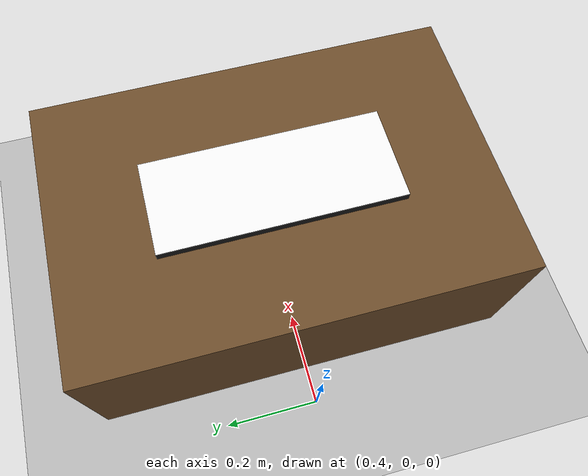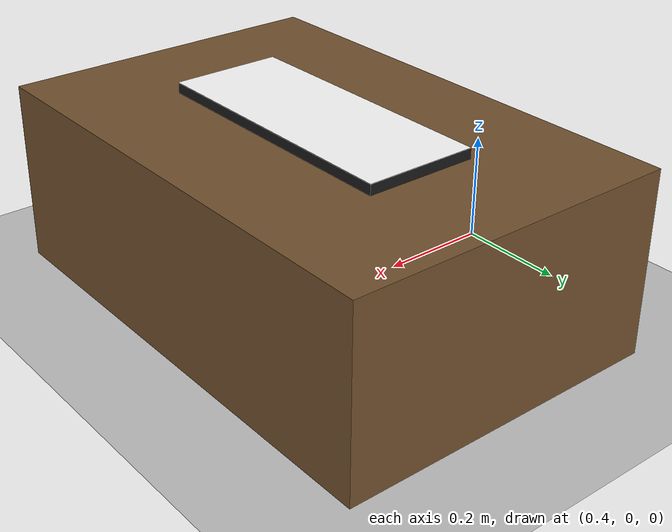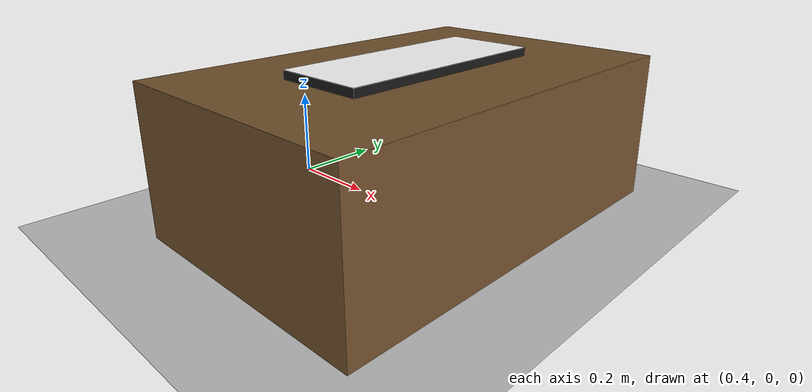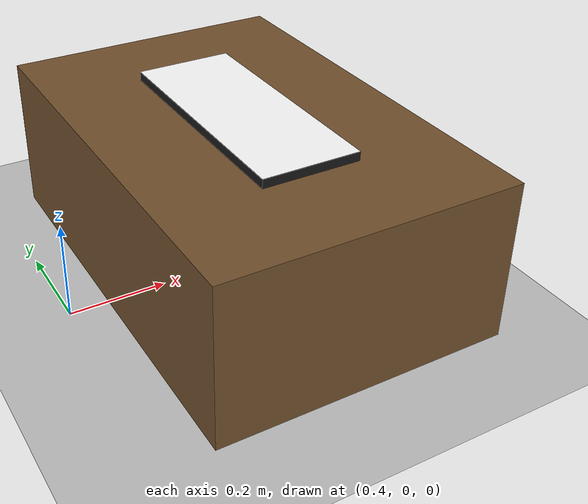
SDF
<?xml version="1.0"?>
<sdf version="1.9">
  <world name="typing_world">
    <physics name="default_physics" type="ode">
      <max_step_size>0.004</max_step_size>
      <real_time_factor>1.0</real_time_factor>
    </physics>

    <plugin filename="gz-sim-physics-system"
            name="gz::sim::systems::Physics"/>
    <plugin filename="gz-sim-user-commands-system"
            name="gz::sim::systems::UserCommands"/>
    <plugin filename="gz-sim-scene-broadcaster-system"
            name="gz::sim::systems::SceneBroadcaster"/>
    <!-- Required for the wrist rgbd_camera to render. -->
    <plugin filename="gz-sim-sensors-system"
            name="gz::sim::systems::Sensors">
      <render_engine>ogre2</render_engine>
    </plugin>

    <scene>
      <ambient>0.6 0.6 0.6 1</ambient>
      <background>0.7 0.8 0.9 1</background>
    </scene>

    <light type="directional" name="sun">
      <cast_shadows>false</cast_shadows>
      <pose>0 0 6 0 0 0</pose>
      <diffuse>0.9 0.9 0.9 1</diffuse>
      <specular>0.1 0.1 0.1 1</specular>
      <direction>-0.3 0.2 -0.9</direction>
    </light>

    <model name="ground_plane">
      <static>true</static>
      <link name="link">
        <collision name="collision">
          <geometry>
            <plane><normal>0 0 1</normal><size>20 20</size></plane>
          </geometry>
        </collision>
        <visual name="visual">
          <geometry>
            <plane><normal>0 0 1</normal><size>20 20</size></plane>
          </geometry>
          <material>
            <ambient>0.75 0.75 0.75 1</ambient>
            <diffuse>0.75 0.75 0.75 1</diffuse>
          </material>
        </visual>
      </link>
    </model>

    <include>
      <uri>model://typing_table</uri>
      <name>typing_table</name>
      <pose>0.78 0 0 0 0 0</pose>
    </include>
    <include>
      <uri>model://aruco_keyboard</uri>
      <name>aruco_keyboard</name>
      <pose>0.78 0 0.34 0 0 1.5708</pose>
    </include>
  </world>
</sdf>

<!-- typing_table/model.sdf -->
<sdf version="1.9">
  <!-- Table top surface sits at z = 0.33 when the model is placed at
       ground level. -->
  <model name="typing_table">
    <static>true</static>
    <link name="top">
      <pose>0 0 0.165 0 0 0</pose>
      <collision name="collision">
        <geometry>
          <box><size>0.6 0.9 0.33</size></box>
        </geometry>
      </collision>
      <visual name="visual">
        <geometry>
          <box><size>0.6 0.9 0.33</size></box>
        </geometry>
        <material>
          <ambient>0.45 0.32 0.18 1</ambient>
          <diffuse>0.45 0.32 0.18 1</diffuse>
        </material>
      </visual>
    </link>
  </model>
</sdf>

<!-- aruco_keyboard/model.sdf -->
<sdf version="1.9">
  <model name="aruco_keyboard">
    <static>true</static>
    <link name="body">
      <collision name="body_collision">
        <geometry>
          <box><size>0.50 0.20 0.02</size></box>
        </geometry>
      </collision>
      <visual name="body_visual">
        <geometry>
          <box><size>0.50 0.20 0.018</size></box>
        </geometry>
        <material>
          <ambient>0.1 0.1 0.1 1</ambient>
          <diffuse>0.1 0.1 0.1 1</diffuse>
        </material>
      </visual>
      <!-- Thin textured slab riding on top of the body so the keyboard
           face texture is only visible from above. -->
      <visual name="face_visual">
        <pose>0 0 0.0095 0 0 0</pose>
        <geometry>
          <box><size>0.50 0.20 0.001</size></box>
        </geometry>
        <material>
          <diffuse>1 1 1 1</diffuse>
          <specular>0.05 0.05 0.05 1</specular>
          <pbr>
            <metal>
              <albedo_map>model://aruco_keyboard/materials/textures/keyboard.png</albedo_map>
              <roughness>0.9</roughness>
              <metalness>0.0</metalness>
            </metal>
          </pbr>
        </material>
      </visual>
    </link>
  </model>
</sdf>
